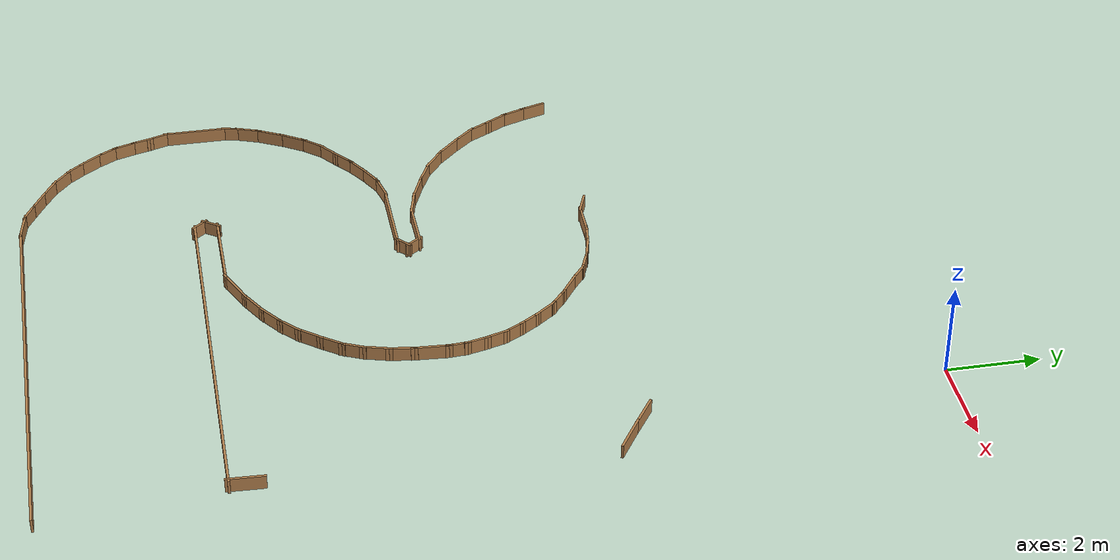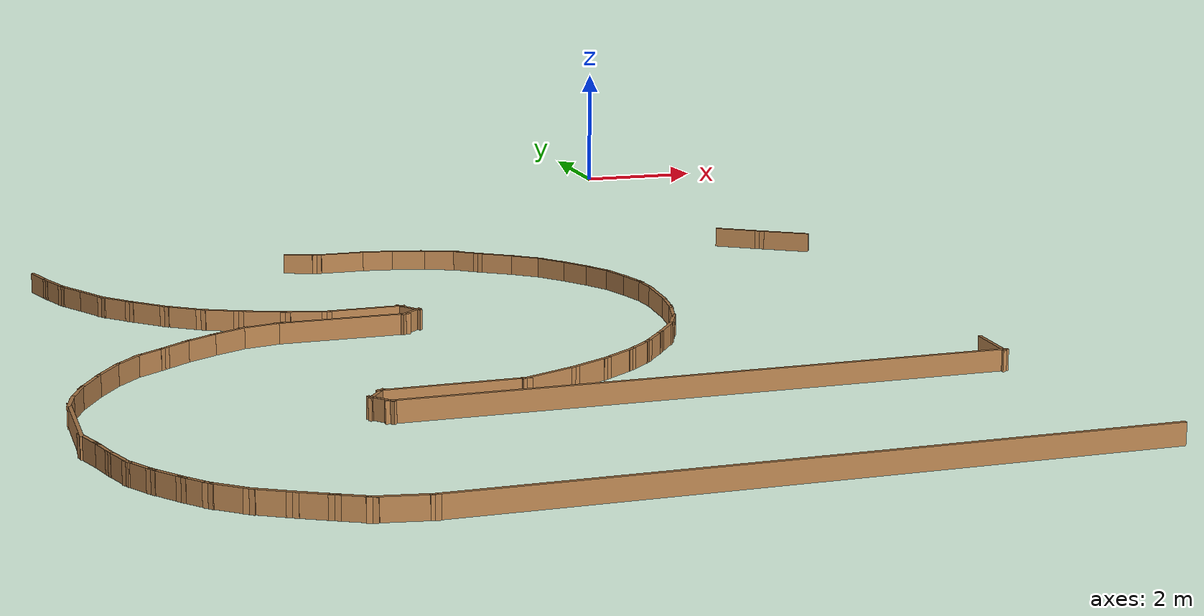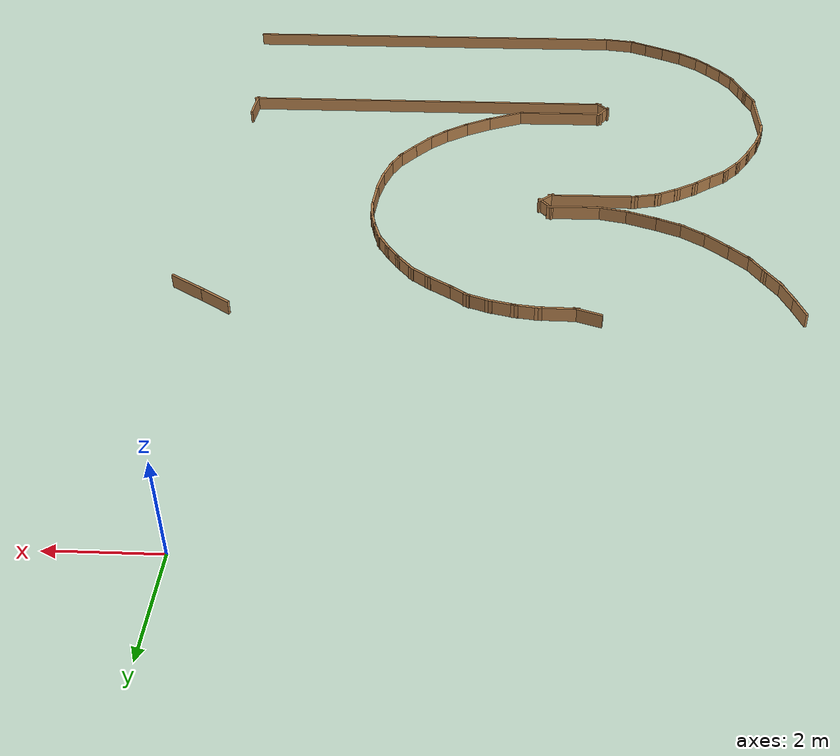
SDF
<sdf version="1.6">
 <model name="rover_racetrack">
  <pose>3.369 -0.8264 0 0 -0 0</pose>
  <link name="Wall_116">
   <collision name="Wall_116_Collision">
    <geometry><box><size>9.45 0.05 0.3</size></box></geometry>
    <pose>0 0 0.15 0 -0 0</pose>
   </collision>
   <visual name="Wall_116_Visual">
    <pose>0 0 0.15 0 -0 0</pose>
    <geometry><box><size>9.45 0.05 0.3</size></box></geometry>
    <material>
     <script><uri>file://media/materials/scripts/gazebo.material</uri><name>Gazebo/Wood</name></script>
     <ambient>0.435294 0.796078 0.67451 1</ambient>
    </material>
   </visual>
   <pose>-6.46341 -17.4035 0 0 -0 3.14159</pose>
  </link>
  <link name="Wall_117">
   <collision name="Wall_117_Collision">
    <geometry><box><size>0.828968 0.05 0.3</size></box></geometry>
    <pose>0 0 0.15 0 -0 0</pose>
   </collision>
   <visual name="Wall_117_Visual">
    <pose>0 0 0.15 0 -0 0</pose>
    <geometry><box><size>0.828968 0.05 0.3</size></box></geometry>
    <material>
     <script><uri>file://media/materials/scripts/gazebo.material</uri><name>Gazebo/Wood</name></script>
     <ambient>0.435294 0.796078 0.67451 1</ambient>
    </material>
   </visual>
   <pose>-11.473 -17.3462 0 0 -0 2.9721</pose>
  </link>
  <link name="Wall_118">
   <collision name="Wall_118_Collision">
    <geometry><box><size>0.575547 0.05 0.3</size></box></geometry>
    <pose>0 0 0.15 0 -0 0</pose>
   </collision>
   <visual name="Wall_118_Visual">
    <pose>0 0 0.15 0 -0 0</pose>
    <geometry><box><size>0.575547 0.05 0.3</size></box></geometry>
    <material>
     <script><uri>file://media/materials/scripts/gazebo.material</uri><name>Gazebo/Wood</name></script>
     <ambient>0.435294 0.796078 0.67451 1</ambient>
    </material>
   </visual>
   <pose>-11.9967 -17.1915 0 0 -0 2.6659</pose>
  </link>
  <link name="Wall_119">
   <collision name="Wall_119_Collision">
    <geometry><box><size>0.632155 0.05 0.3</size></box></geometry>
    <pose>0 0 0.15 0 -0 0</pose>
   </collision>
   <visual name="Wall_119_Visual">
    <pose>0 0 0.15 0 -0 0</pose>
    <geometry><box><size>0.632155 0.05 0.3</size></box></geometry>
    <material>
     <script><uri>file://media/materials/scripts/gazebo.material</uri><name>Gazebo/Wood</name></script>
     <ambient>0.435294 0.796078 0.67451 1</ambient>
    </material>
   </visual>
   <pose>-12.3979 -16.9794 0 0 -0 2.64604</pose>
  </link>
  <link name="Wall_120">
   <collision name="Wall_120_Collision">
    <geometry><box><size>0.653357 0.05 0.3</size></box></geometry>
    <pose>0 0 0.15 0 -0 0</pose>
   </collision>
   <visual name="Wall_120_Visual">
    <pose>0 0 0.15 0 -0 0</pose>
    <geometry><box><size>0.653357 0.05 0.3</size></box></geometry>
    <material>
     <script><uri>file://media/materials/scripts/gazebo.material</uri><name>Gazebo/Wood</name></script>
     <ambient>0.435294 0.796078 0.67451 1</ambient>
    </material>
   </visual>
   <pose>-12.8278 -16.7387 0 0 -0 2.6168</pose>
  </link>
  <link name="Wall_121">
   <collision name="Wall_121_Collision">
    <geometry><box><size>0.67106 0.05 0.3</size></box></geometry>
    <pose>0 0 0.15 0 -0 0</pose>
   </collision>
   <visual name="Wall_121_Visual">
    <pose>0 0 0.15 0 -0 0</pose>
    <geometry><box><size>0.67106 0.05 0.3</size></box></geometry>
    <material>
     <script><uri>file://media/materials/scripts/gazebo.material</uri><name>Gazebo/Wood</name></script>
     <ambient>0.435294 0.796078 0.67451 1</ambient>
    </material>
   </visual>
   <pose>-13.2463 -16.4464 0 0 -0 2.44967</pose>
  </link>
  <link name="Wall_122">
   <collision name="Wall_122_Collision">
    <geometry><box><size>0.540437 0.05 0.3</size></box></geometry>
    <pose>0 0 0.15 0 -0 0</pose>
   </collision>
   <visual name="Wall_122_Visual">
    <pose>0 0 0.15 0 -0 0</pose>
    <geometry><box><size>0.540437 0.05 0.3</size></box></geometry>
    <material>
     <script><uri>file://media/materials/scripts/gazebo.material</uri><name>Gazebo/Wood</name></script>
     <ambient>0.435294 0.796078 0.67451 1</ambient>
    </material>
   </visual>
   <pose>-13.573 -16.1311 0 0 -0 2.27305</pose>
  </link>
  <link name="Wall_124">
   <collision name="Wall_124_Collision">
    <geometry><box><size>0.6246 0.05 0.3</size></box></geometry>
    <pose>0 0 0.15 0 -0 0</pose>
   </collision>
   <visual name="Wall_124_Visual">
    <pose>0 0 0.15 0 -0 0</pose>
    <geometry><box><size>0.6246 0.05 0.3</size></box></geometry>
    <material>
     <script><uri>file://media/materials/scripts/gazebo.material</uri><name>Gazebo/Wood</name></script>
     <ambient>0.435294 0.796078 0.67451 1</ambient>
    </material>
   </visual>
   <pose>-13.8424 -15.7929 0 0 -0 2.21913</pose>
  </link>
  <link name="Wall_125">
   <collision name="Wall_125_Collision">
    <geometry><box><size>0.592354 0.05 0.3</size></box></geometry>
    <pose>0 0 0.15 0 -0 0</pose>
   </collision>
   <visual name="Wall_125_Visual">
    <pose>0 0 0.15 0 -0 0</pose>
    <geometry><box><size>0.592354 0.05 0.3</size></box></geometry>
    <material>
     <script><uri>file://media/materials/scripts/gazebo.material</uri><name>Gazebo/Wood</name></script>
     <ambient>0.435294 0.796078 0.67451 1</ambient>
    </material>
   </visual>
   <pose>-14.1003 -15.4146 0 0 -0 2.11566</pose>
  </link>
  <link name="Wall_126">
   <collision name="Wall_126_Collision">
    <geometry><box><size>0.610405 0.05 0.3</size></box></geometry>
    <pose>0 0 0.15 0 -0 0</pose>
   </collision>
   <visual name="Wall_126_Visual">
    <pose>0 0 0.15 0 -0 0</pose>
    <geometry><box><size>0.610405 0.05 0.3</size></box></geometry>
    <material>
     <script><uri>file://media/materials/scripts/gazebo.material</uri><name>Gazebo/Wood</name></script>
     <ambient>0.435294 0.796078 0.67451 1</ambient>
    </material>
   </visual>
   <pose>-14.2894 -15.0077 0 0 -0 1.90042</pose>
  </link>
  <link name="Wall_127">
   <collision name="Wall_127_Collision">
    <geometry><box><size>0.520047 0.05 0.3</size></box></geometry>
    <pose>0 0 0.15 0 -0 0</pose>
   </collision>
   <visual name="Wall_127_Visual">
    <pose>0 0 0.15 0 -0 0</pose>
    <geometry><box><size>0.520047 0.05 0.3</size></box></geometry>
    <material>
     <script><uri>file://media/materials/scripts/gazebo.material</uri><name>Gazebo/Wood</name></script>
     <ambient>0.435294 0.796078 0.67451 1</ambient>
    </material>
   </visual>
   <pose>-14.4155 -14.6122 0 0 -0 1.85335</pose>
  </link>
  <link name="Wall_128">
   <collision name="Wall_128_Collision">
    <geometry><box><size>0.574155 0.05 0.3</size></box></geometry>
    <pose>0 0 0.15 0 -0 0</pose>
   </collision>
   <visual name="Wall_128_Visual">
    <pose>0 0 0.15 0 -0 0</pose>
    <geometry><box><size>0.574155 0.05 0.3</size></box></geometry>
    <material>
     <script><uri>file://media/materials/scripts/gazebo.material</uri><name>Gazebo/Wood</name></script>
     <ambient>0.435294 0.796078 0.67451 1</ambient>
    </material>
   </visual>
   <pose>-14.5359 -14.2339 0 0 -0 1.90109</pose>
  </link>
  <link name="Wall_129">
   <collision name="Wall_129_Collision">
    <geometry><box><size>1.46832 0.05 0.3</size></box></geometry>
    <pose>0 0 0.15 0 -0 0</pose>
   </collision>
   <visual name="Wall_129_Visual">
    <pose>0 0 0.15 0 -0 0</pose>
    <geometry><box><size>1.46832 0.05 0.3</size></box></geometry>
    <material>
     <script><uri>file://media/materials/scripts/gazebo.material</uri><name>Gazebo/Wood</name></script>
     <ambient>0.435294 0.796078 0.67451 1</ambient>
    </material>
   </visual>
   <pose>-14.6047 -13.3741 0 0 -0 1.5708</pose>
  </link>
  <link name="Wall_130">
   <collision name="Wall_130_Collision">
    <geometry><box><size>0.455888 0.05 0.3</size></box></geometry>
    <pose>0 0 0.15 0 -0 0</pose>
   </collision>
   <visual name="Wall_130_Visual">
    <pose>0 0 0.15 0 -0 0</pose>
    <geometry><box><size>0.455888 0.05 0.3</size></box></geometry>
    <material>
     <script><uri>file://media/materials/scripts/gazebo.material</uri><name>Gazebo/Wood</name></script>
     <ambient>0.435294 0.796078 0.67451 1</ambient>
    </material>
   </visual>
   <pose>-14.5703 -12.5659 0 0 -0 1.344</pose>
  </link>
  <link name="Wall_131">
   <collision name="Wall_131_Collision">
    <geometry><box><size>0.614242 0.05 0.3</size></box></geometry>
    <pose>0 0 0.15 0 -0 0</pose>
   </collision>
   <visual name="Wall_131_Visual">
    <pose>0 0 0.15 0 -0 0</pose>
    <geometry><box><size>0.614242 0.05 0.3</size></box></geometry>
    <material>
     <script><uri>file://media/materials/scripts/gazebo.material</uri><name>Gazebo/Wood</name></script>
     <ambient>0.435294 0.796078 0.67451 1</ambient>
    </material>
   </visual>
   <pose>-14.4557 -12.1991 0 0 -0 1.21781</pose>
  </link>
  <link name="Wall_133">
   <collision name="Wall_133_Collision">
    <geometry><box><size>0.760271 0.05 0.3</size></box></geometry>
    <pose>0 0 0.15 0 -0 0</pose>
   </collision>
   <visual name="Wall_133_Visual">
    <pose>0 0 0.15 0 -0 0</pose>
    <geometry><box><size>0.760271 0.05 0.3</size></box></geometry>
    <material>
     <script><uri>file://media/materials/scripts/gazebo.material</uri><name>Gazebo/Wood</name></script>
     <ambient>0.435294 0.796078 0.67451 1</ambient>
    </material>
   </visual>
   <pose>-14.2321 -11.7119 0 0 -0 1.08194</pose>
  </link>
  <link name="Wall_134">
   <collision name="Wall_134_Collision">
    <geometry><box><size>0.681052 0.05 0.3</size></box></geometry>
    <pose>0 0 0.15 0 -0 0</pose>
   </collision>
   <visual name="Wall_134_Visual">
    <pose>0 0 0.15 0 -0 0</pose>
    <geometry><box><size>0.681052 0.05 0.3</size></box></geometry>
    <material>
     <script><uri>file://media/materials/scripts/gazebo.material</uri><name>Gazebo/Wood</name></script>
     <ambient>0.435294 0.796078 0.67451 1</ambient>
    </material>
   </visual>
   <pose>-13.9455 -11.219 0 0 -0 1.00076</pose>
  </link>
  <link name="Wall_135">
   <collision name="Wall_135_Collision">
    <geometry><box><size>0.637441 0.05 0.3</size></box></geometry>
    <pose>0 0 0.15 0 -0 0</pose>
   </collision>
   <visual name="Wall_135_Visual">
    <pose>0 0 0.15 0 -0 0</pose>
    <geometry><box><size>0.637441 0.05 0.3</size></box></geometry>
    <material>
     <script><uri>file://media/materials/scripts/gazebo.material</uri><name>Gazebo/Wood</name></script>
     <ambient>0.435294 0.796078 0.67451 1</ambient>
    </material>
   </visual>
   <pose>-13.6417 -10.812 0 0 -0 0.851966</pose>
  </link>
  <link name="Wall_136">
   <collision name="Wall_136_Collision">
    <geometry><box><size>0.633787 0.05 0.3</size></box></geometry>
    <pose>0 0 0.15 0 -0 0</pose>
   </collision>
   <visual name="Wall_136_Visual">
    <pose>0 0 0.15 0 -0 0</pose>
    <geometry><box><size>0.633787 0.05 0.3</size></box></geometry>
    <material>
     <script><uri>file://media/materials/scripts/gazebo.material</uri><name>Gazebo/Wood</name></script>
     <ambient>0.435294 0.796078 0.67451 1</ambient>
    </material>
   </visual>
   <pose>-13.2864 -10.4853 0 0 -0 0.634023</pose>
  </link>
  <link name="Wall_137">
   <collision name="Wall_137_Collision">
    <geometry><box><size>0.615514 0.05 0.3</size></box></geometry>
    <pose>0 0 0.15 0 -0 0</pose>
   </collision>
   <visual name="Wall_137_Visual">
    <pose>0 0 0.15 0 -0 0</pose>
    <geometry><box><size>0.615514 0.05 0.3</size></box></geometry>
    <material>
     <script><uri>file://media/materials/scripts/gazebo.material</uri><name>Gazebo/Wood</name></script>
     <ambient>0.435294 0.796078 0.67451 1</ambient>
    </material>
   </visual>
   <pose>-12.9081 -10.1987 0 0 -0 0.663203</pose>
  </link>
  <link name="Wall_138">
   <collision name="Wall_138_Collision">
    <geometry><box><size>0.633651 0.05 0.3</size></box></geometry>
    <pose>0 0 0.15 0 -0 0</pose>
   </collision>
   <visual name="Wall_138_Visual">
    <pose>0 0 0.15 0 -0 0</pose>
    <geometry><box><size>0.633651 0.05 0.3</size></box></geometry>
    <material>
     <script><uri>file://media/materials/scripts/gazebo.material</uri><name>Gazebo/Wood</name></script>
     <ambient>0.435294 0.796078 0.67451 1</ambient>
    </material>
   </visual>
   <pose>-12.5183 -9.9293 0 0 -0 0.548549</pose>
  </link>
  <link name="Wall_139">
   <collision name="Wall_139_Collision">
    <geometry><box><size>0.652442 0.05 0.3</size></box></geometry>
    <pose>0 0 0.15 0 -0 0</pose>
   </collision>
   <visual name="Wall_139_Visual">
    <pose>0 0 0.15 0 -0 0</pose>
    <geometry><box><size>0.652442 0.05 0.3</size></box></geometry>
    <material>
     <script><uri>file://media/materials/scripts/gazebo.material</uri><name>Gazebo/Wood</name></script>
     <ambient>0.435294 0.796078 0.67451 1</ambient>
    </material>
   </visual>
   <pose>-12.0884 -9.68856 0 0 -0 0.473851</pose>
  </link>
  <link name="Wall_140">
   <collision name="Wall_140_Collision">
    <geometry><box><size>0.678448 0.05 0.3</size></box></geometry>
    <pose>0 0 0.15 0 -0 0</pose>
   </collision>
   <visual name="Wall_140_Visual">
    <pose>0 0 0.15 0 -0 0</pose>
    <geometry><box><size>0.678448 0.05 0.3</size></box></geometry>
    <material>
     <script><uri>file://media/materials/scripts/gazebo.material</uri><name>Gazebo/Wood</name></script>
     <ambient>0.435294 0.796078 0.67451 1</ambient>
    </material>
   </visual>
   <pose>-11.607 -9.51661 0 0 -0 0.218669</pose>
  </link>
  <link name="Wall_141">
   <collision name="Wall_141_Collision">
    <geometry><box><size>1.98422 0.05 0.3</size></box></geometry>
    <pose>0 0 0.15 0 -0 0</pose>
   </collision>
   <visual name="Wall_141_Visual">
    <pose>0 0 0.15 0 -0 0</pose>
    <geometry><box><size>1.98422 0.05 0.3</size></box></geometry>
    <material>
     <script><uri>file://media/materials/scripts/gazebo.material</uri><name>Gazebo/Wood</name></script>
     <ambient>0.435294 0.796078 0.67451 1</ambient>
    </material>
   </visual>
   <pose>-10.4319 -9.45356 0 0 -0 0.00625</pose>
  </link>
  <link name="Wall_142">
   <collision name="Wall_142_Collision">
    <geometry><box><size>0.458455 0.05 0.3</size></box></geometry>
    <pose>0 0 0.15 0 -0 0</pose>
   </collision>
   <visual name="Wall_142_Visual">
    <pose>0 0 0.15 0 -0 0</pose>
    <geometry><box><size>0.458455 0.05 0.3</size></box></geometry>
    <material>
     <script><uri>file://media/materials/scripts/gazebo.material</uri><name>Gazebo/Wood</name></script>
     <ambient>0.435294 0.796078 0.67451 1</ambient>
    </material>
   </visual>
   <pose>-9.4002 -9.34465 0 0 -0 0.732815</pose>
  </link>
  <link name="Wall_143">
   <collision name="Wall_143_Collision">
    <geometry><box><size>0.477868 0.05 0.3</size></box></geometry>
    <pose>0 0 0.15 0 -0 0</pose>
   </collision>
   <visual name="Wall_143_Visual">
    <pose>0 0 0.15 0 -0 0</pose>
    <geometry><box><size>0.477868 0.05 0.3</size></box></geometry>
    <material>
     <script><uri>file://media/materials/scripts/gazebo.material</uri><name>Gazebo/Wood</name></script>
     <ambient>0.435294 0.796078 0.67451 1</ambient>
    </material>
   </visual>
   <pose>-9.38301 -9.10965 0 0 -0 2.2073</pose>
  </link>
  <link name="Wall_144">
   <collision name="Wall_144_Collision">
    <geometry><box><size>1.22783 0.05 0.3</size></box></geometry>
    <pose>0 0 0.15 0 -0 0</pose>
   </collision>
   <visual name="Wall_144_Visual">
    <pose>0 0 0.15 0 -0 0</pose>
    <geometry><box><size>1.22783 0.05 0.3</size></box></geometry>
    <material>
     <script><uri>file://media/materials/scripts/gazebo.material</uri><name>Gazebo/Wood</name></script>
     <ambient>0.435294 0.796078 0.67451 1</ambient>
    </material>
   </visual>
   <pose>-10.0192 -8.98355 0 0 0 -3.13096</pose>
  </link>
  <link name="Wall_145">
   <collision name="Wall_145_Collision">
    <geometry><box><size>0.739458 0.05 0.3</size></box></geometry>
    <pose>0 0 0.15 0 -0 0</pose>
   </collision>
   <visual name="Wall_145_Visual">
    <pose>0 0 0.15 0 -0 0</pose>
    <geometry><box><size>0.739458 0.05 0.3</size></box></geometry>
    <material>
     <script><uri>file://media/materials/scripts/gazebo.material</uri><name>Gazebo/Wood</name></script>
     <ambient>0.435294 0.796078 0.67451 1</ambient>
    </material>
   </visual>
   <pose>-10.8446 -8.9205 0 0 -0 2.90605</pose>
  </link>
  <link name="Wall_146">
   <collision name="Wall_146_Collision">
    <geometry><box><size>0.829069 0.05 0.3</size></box></geometry>
    <pose>0 0 0.15 0 -0 0</pose>
   </collision>
   <visual name="Wall_146_Visual">
    <pose>0 0 0.15 0 -0 0</pose>
    <geometry><box><size>0.829069 0.05 0.3</size></box></geometry>
    <material>
     <script><uri>file://media/materials/scripts/gazebo.material</uri><name>Gazebo/Wood</name></script>
     <ambient>0.435294 0.796078 0.67451 1</ambient>
    </material>
   </visual>
   <pose>-11.4465 -8.72562 0 0 -0 2.76109</pose>
  </link>
  <link name="Wall_148">
   <collision name="Wall_148_Collision">
    <geometry><box><size>0.708904 0.05 0.3</size></box></geometry>
    <pose>0 0 0.15 0 -0 0</pose>
   </collision>
   <visual name="Wall_148_Visual">
    <pose>0 0 0.15 0 -0 0</pose>
    <geometry><box><size>0.708904 0.05 0.3</size></box></geometry>
    <material>
     <script><uri>file://media/materials/scripts/gazebo.material</uri><name>Gazebo/Wood</name></script>
     <ambient>0.435294 0.796078 0.67451 1</ambient>
    </material>
   </visual>
   <pose>-12.0139 -8.47915 0 0 -0 2.69629</pose>
  </link>
  <link name="Wall_149">
   <collision name="Wall_149_Collision">
    <geometry><box><size>0.732393 0.05 0.3</size></box></geometry>
    <pose>0 0 0.15 0 -0 0</pose>
   </collision>
   <visual name="Wall_149_Visual">
    <pose>0 0 0.15 0 -0 0</pose>
    <geometry><box><size>0.732393 0.05 0.3</size></box></geometry>
    <material>
     <script><uri>file://media/materials/scripts/gazebo.material</uri><name>Gazebo/Wood</name></script>
     <ambient>0.435294 0.796078 0.67451 1</ambient>
    </material>
   </visual>
   <pose>-12.5011 -8.18683 0 0 -0 2.5099</pose>
  </link>
  <link name="Wall_150">
   <collision name="Wall_150_Collision">
    <geometry><box><size>0.774216 0.05 0.3</size></box></geometry>
    <pose>0 0 0.15 0 -0 0</pose>
   </collision>
   <visual name="Wall_150_Visual">
    <pose>0 0 0.15 0 -0 0</pose>
    <geometry><box><size>0.774216 0.05 0.3</size></box></geometry>
    <material>
     <script><uri>file://media/materials/scripts/gazebo.material</uri><name>Gazebo/Wood</name></script>
     <ambient>0.435294 0.796078 0.67451 1</ambient>
    </material>
   </visual>
   <pose>-12.9597 -7.79706 0 0 -0 2.36918</pose>
  </link>
  <link name="Wall_151">
   <collision name="Wall_151_Collision">
    <geometry><box><size>0.677452 0.05 0.3</size></box></geometry>
    <pose>0 0 0.15 0 -0 0</pose>
   </collision>
   <visual name="Wall_151_Visual">
    <pose>0 0 0.15 0 -0 0</pose>
    <geometry><box><size>0.677452 0.05 0.3</size></box></geometry>
    <material>
     <script><uri>file://media/materials/scripts/gazebo.material</uri><name>Gazebo/Wood</name></script>
     <ambient>0.435294 0.796078 0.67451 1</ambient>
    </material>
   </visual>
   <pose>-13.3609 -7.38437 0 0 -0 2.31007</pose>
  </link>
  <link name="Wall_152">
   <collision name="Wall_152_Collision">
    <geometry><box><size>0.66331 0.05 0.3</size></box></geometry>
    <pose>0 0 0.15 0 -0 0</pose>
   </collision>
   <visual name="Wall_152_Visual">
    <pose>0 0 0.15 0 -0 0</pose>
    <geometry><box><size>0.66331 0.05 0.3</size></box></geometry>
    <material>
     <script><uri>file://media/materials/scripts/gazebo.material</uri><name>Gazebo/Wood</name></script>
     <ambient>0.435294 0.796078 0.67451 1</ambient>
    </material>
   </visual>
   <pose>-13.6647 -6.96595 0 0 -0 2.0844</pose>
  </link>
  <link name="Wall_153">
   <collision name="Wall_153_Collision">
    <geometry><box><size>0.627774 0.05 0.3</size></box></geometry>
    <pose>0 0 0.15 0 -0 0</pose>
   </collision>
   <visual name="Wall_153_Visual">
    <pose>0 0 0.15 0 -0 0</pose>
    <geometry><box><size>0.627774 0.05 0.3</size></box></geometry>
    <material>
     <script><uri>file://media/materials/scripts/gazebo.material</uri><name>Gazebo/Wood</name></script>
     <ambient>0.435294 0.796078 0.67451 1</ambient>
    </material>
   </visual>
   <pose>-13.9111 -6.53606 0 0 -0 2.09887</pose>
  </link>
  <link name="Wall_154">
   <collision name="Wall_154_Collision">
    <geometry><box><size>0.675955 0.05 0.3</size></box></geometry>
    <pose>0 0 0.15 0 -0 0</pose>
   </collision>
   <visual name="Wall_154_Visual">
    <pose>0 0 0.15 0 -0 0</pose>
    <geometry><box><size>0.675955 0.05 0.3</size></box></geometry>
    <material>
     <script><uri>file://media/materials/scripts/gazebo.material</uri><name>Gazebo/Wood</name></script>
     <ambient>0.435294 0.796078 0.67451 1</ambient>
    </material>
   </visual>
   <pose>-14.1232 -6.08325 0 0 -0 1.92702</pose>
  </link>
  <link name="Wall_155">
   <collision name="Wall_155_Collision">
    <geometry><box><size>0.606823 0.05 0.3</size></box></geometry>
    <pose>0 0 0.15 0 -0 0</pose>
   </collision>
   <visual name="Wall_155_Visual">
    <pose>0 0 0.15 0 -0 0</pose>
    <geometry><box><size>0.606823 0.05 0.3</size></box></geometry>
    <material>
     <script><uri>file://media/materials/scripts/gazebo.material</uri><name>Gazebo/Wood</name></script>
     <ambient>0.435294 0.796078 0.67451 1</ambient>
    </material>
   </visual>
   <pose>-14.2837 -5.61897 0 0 -0 1.87668</pose>
  </link>
  <link name="Wall_308">
   <collision name="Wall_308_Collision">
    <geometry><box><size>0.800861 0.05 0.3</size></box></geometry>
    <pose>0 0 0.15 0 -0 0</pose>
   </collision>
   <visual name="Wall_308_Visual">
    <pose>0 0 0.15 0 -0 0</pose>
    <geometry><box><size>0.800861 0.05 0.3</size></box></geometry>
    <material>
     <script><uri>file://media/materials/scripts/gazebo.material</uri><name>Gazebo/Wood</name></script>
     <ambient>0.435294 0.796078 0.67451 1</ambient>
    </material>
   </visual>
   <pose>-2.24553 -13.3828 0 0 0 -1.61159</pose>
  </link>
  <link name="Wall_309">
   <collision name="Wall_309_Collision">
    <geometry><box><size>8.63516 0.05 0.3</size></box></geometry>
    <pose>0 0 0.15 0 -0 0</pose>
   </collision>
   <visual name="Wall_309_Visual">
    <pose>0 0 0.15 0 -0 0</pose>
    <geometry><box><size>8.63516 0.05 0.3</size></box></geometry>
    <material>
     <script><uri>file://media/materials/scripts/gazebo.material</uri><name>Gazebo/Wood</name></script>
     <ambient>0.435294 0.796078 0.67451 1</ambient>
    </material>
   </visual>
   <pose>-6.50136 -13.701 0 0 -0 3.14003</pose>
  </link>
  <link name="Wall_310">
   <collision name="Wall_310_Collision">
    <geometry><box><size>0.441978 0.05 0.3</size></box></geometry>
    <pose>0 0 0.15 0 -0 0</pose>
   </collision>
   <visual name="Wall_310_Visual">
    <pose>0 0 0.15 0 -0 0</pose>
    <geometry><box><size>0.441978 0.05 0.3</size></box></geometry>
    <material>
     <script><uri>file://media/materials/scripts/gazebo.material</uri><name>Gazebo/Wood</name></script>
     <ambient>0.435294 0.796078 0.67451 1</ambient>
    </material>
   </visual>
   <pose>-10.8367 -13.5817 0 0 -0 2.25972</pose>
  </link>
  <link name="Wall_311">
   <collision name="Wall_311_Collision">
    <geometry><box><size>0.47367 0.05 0.3</size></box></geometry>
    <pose>0 0 0.15 0 -0 0</pose>
   </collision>
   <visual name="Wall_311_Visual">
    <pose>0 0 0.15 0 -0 0</pose>
    <geometry><box><size>0.47367 0.05 0.3</size></box></geometry>
    <material>
     <script><uri>file://media/materials/scripts/gazebo.material</uri><name>Gazebo/Wood</name></script>
     <ambient>0.435294 0.796078 0.67451 1</ambient>
    </material>
   </visual>
   <pose>-10.8367 -13.3364 0 0 -0 0.96007</pose>
  </link>
  <link name="Wall_312">
   <collision name="Wall_312_Collision">
    <geometry><box><size>2.07246 0.05 0.3</size></box></geometry>
    <pose>0 0 0.15 0 -0 0</pose>
   </collision>
   <visual name="Wall_312_Visual">
    <pose>0 0 0.15 0 -0 0</pose>
    <geometry><box><size>2.07246 0.05 0.3</size></box></geometry>
    <material>
     <script><uri>file://media/materials/scripts/gazebo.material</uri><name>Gazebo/Wood</name></script>
     <ambient>0.435294 0.796078 0.67451 1</ambient>
    </material>
   </visual>
   <pose>-9.78272 -13.1972 0 0 -0 0.006896</pose>
  </link>
  <link name="Wall_313">
   <collision name="Wall_313_Collision">
    <geometry><box><size>0.9752 0.05 0.3</size></box></geometry>
    <pose>0 0 0.15 0 -0 0</pose>
   </collision>
   <visual name="Wall_313_Visual">
    <pose>0 0 0.15 0 -0 0</pose>
    <geometry><box><size>0.9752 0.05 0.3</size></box></geometry>
    <material>
     <script><uri>file://media/materials/scripts/gazebo.material</uri><name>Gazebo/Wood</name></script>
     <ambient>0.435294 0.796078 0.67451 1</ambient>
    </material>
   </visual>
   <pose>-8.44366 -13.0248 0 0 -0 0.41333</pose>
  </link>
  <link name="Wall_314">
   <collision name="Wall_314_Collision">
    <geometry><box><size>0.773269 0.05 0.3</size></box></geometry>
    <pose>0 0 0.15 0 -0 0</pose>
   </collision>
   <visual name="Wall_314_Visual">
    <pose>0 0 0.15 0 -0 0</pose>
    <geometry><box><size>0.773269 0.05 0.3</size></box></geometry>
    <material>
     <script><uri>file://media/materials/scripts/gazebo.material</uri><name>Gazebo/Wood</name></script>
     <ambient>0.435294 0.796078 0.67451 1</ambient>
    </material>
   </visual>
   <pose>-7.79402 -12.7066 0 0 -0 0.511231</pose>
  </link>
  <link name="Wall_315">
   <collision name="Wall_315_Collision">
    <geometry><box><size>0.72025 0.05 0.3</size></box></geometry>
    <pose>0 0 0.15 0 -0 0</pose>
   </collision>
   <visual name="Wall_315_Visual">
    <pose>0 0 0.15 0 -0 0</pose>
    <geometry><box><size>0.72025 0.05 0.3</size></box></geometry>
    <material>
     <script><uri>file://media/materials/scripts/gazebo.material</uri><name>Gazebo/Wood</name></script>
     <ambient>0.435294 0.796078 0.67451 1</ambient>
    </material>
   </visual>
   <pose>-7.29021 -12.3884 0 0 -0 0.620249</pose>
  </link>
  <link name="Wall_316">
   <collision name="Wall_316_Collision">
    <geometry><box><size>0.637853 0.05 0.3</size></box></geometry>
    <pose>0 0 0.15 0 -0 0</pose>
   </collision>
   <visual name="Wall_316_Visual">
    <pose>0 0 0.15 0 -0 0</pose>
    <geometry><box><size>0.637853 0.05 0.3</size></box></geometry>
    <material>
     <script><uri>file://media/materials/scripts/gazebo.material</uri><name>Gazebo/Wood</name></script>
     <ambient>0.435294 0.796078 0.67451 1</ambient>
    </material>
   </visual>
   <pose>-6.87921 -12.057 0 0 -0 0.746956</pose>
  </link>
  <link name="Wall_317">
   <collision name="Wall_317_Collision">
    <geometry><box><size>0.677997 0.05 0.3</size></box></geometry>
    <pose>0 0 0.15 0 -0 0</pose>
   </collision>
   <visual name="Wall_317_Visual">
    <pose>0 0 0.15 0 -0 0</pose>
    <geometry><box><size>0.677997 0.05 0.3</size></box></geometry>
    <material>
     <script><uri>file://media/materials/scripts/gazebo.material</uri><name>Gazebo/Wood</name></script>
     <ambient>0.435294 0.796078 0.67451 1</ambient>
    </material>
   </visual>
   <pose>-6.5345 -11.6858 0 0 -0 0.892134</pose>
  </link>
  <link name="Wall_318">
   <collision name="Wall_318_Collision">
    <geometry><box><size>0.661767 0.05 0.3</size></box></geometry>
    <pose>0 0 0.15 0 -0 0</pose>
   </collision>
   <visual name="Wall_318_Visual">
    <pose>0 0 0.15 0 -0 0</pose>
    <geometry><box><size>0.661767 0.05 0.3</size></box></geometry>
    <material>
     <script><uri>file://media/materials/scripts/gazebo.material</uri><name>Gazebo/Wood</name></script>
     <ambient>0.435294 0.796078 0.67451 1</ambient>
    </material>
   </visual>
   <pose>-6.21631 -11.2748 0 0 -0 0.932477</pose>
  </link>
  <link name="Wall_319">
   <collision name="Wall_319_Collision">
    <geometry><box><size>0.588919 0.05 0.3</size></box></geometry>
    <pose>0 0 0.15 0 -0 0</pose>
   </collision>
   <visual name="Wall_319_Visual">
    <pose>0 0 0.15 0 -0 0</pose>
    <geometry><box><size>0.588919 0.05 0.3</size></box></geometry>
    <material>
     <script><uri>file://media/materials/scripts/gazebo.material</uri><name>Gazebo/Wood</name></script>
     <ambient>0.435294 0.796078 0.67451 1</ambient>
    </material>
   </visual>
   <pose>-5.97104 -10.8704 0 0 -0 1.13417</pose>
  </link>
  <link name="Wall_320">
   <collision name="Wall_320_Collision">
    <geometry><box><size>0.687237 0.05 0.3</size></box></geometry>
    <pose>0 0 0.15 0 -0 0</pose>
   </collision>
   <visual name="Wall_320_Visual">
    <pose>0 0 0.15 0 -0 0</pose>
    <geometry><box><size>0.687237 0.05 0.3</size></box></geometry>
    <material>
     <script><uri>file://media/materials/scripts/gazebo.material</uri><name>Gazebo/Wood</name></script>
     <ambient>0.435294 0.796078 0.67451 1</ambient>
    </material>
   </visual>
   <pose>-5.80531 -10.413 0 0 -0 1.29589</pose>
  </link>
  <link name="Wall_321">
   <collision name="Wall_321_Collision">
    <geometry><box><size>0.660047 0.05 0.3</size></box></geometry>
    <pose>0 0 0.15 0 -0 0</pose>
   </collision>
   <visual name="Wall_321_Visual">
    <pose>0 0 0.15 0 -0 0</pose>
    <geometry><box><size>0.660047 0.05 0.3</size></box></geometry>
    <material>
     <script><uri>file://media/materials/scripts/gazebo.material</uri><name>Gazebo/Wood</name></script>
     <ambient>0.435294 0.796078 0.67451 1</ambient>
    </material>
   </visual>
   <pose>-5.69262 -9.90255 0 0 -0 1.41419</pose>
  </link>
  <link name="Wall_323">
   <collision name="Wall_323_Collision">
    <geometry><box><size>0.853177 0.05 0.3</size></box></geometry>
    <pose>0 0 0.15 0 -0 0</pose>
   </collision>
   <visual name="Wall_323_Visual">
    <pose>0 0 0.15 0 -0 0</pose>
    <geometry><box><size>0.853177 0.05 0.3</size></box></geometry>
    <material>
     <script><uri>file://media/materials/scripts/gazebo.material</uri><name>Gazebo/Wood</name></script>
     <ambient>0.435294 0.796078 0.67451 1</ambient>
    </material>
   </visual>
   <pose>-5.63296 -9.29931 0 0 -0 1.51425</pose>
  </link>
  <link name="Wall_324">
   <collision name="Wall_324_Collision">
    <geometry><box><size>0.535397 0.05 0.3</size></box></geometry>
    <pose>0 0 0.15 0 -0 0</pose>
   </collision>
   <visual name="Wall_324_Visual">
    <pose>0 0 0.15 0 -0 0</pose>
    <geometry><box><size>0.535397 0.05 0.3</size></box></geometry>
    <material>
     <script><uri>file://media/materials/scripts/gazebo.material</uri><name>Gazebo/Wood</name></script>
     <ambient>0.435294 0.796078 0.67451 1</ambient>
    </material>
   </visual>
   <pose>-5.62633 -8.75573 0 0 -0 1.63965</pose>
  </link>
  <link name="Wall_325">
   <collision name="Wall_325_Collision">
    <geometry><box><size>0.587315 0.05 0.3</size></box></geometry>
    <pose>0 0 0.15 0 -0 0</pose>
   </collision>
   <visual name="Wall_325_Visual">
    <pose>0 0 0.15 0 -0 0</pose>
    <geometry><box><size>0.587315 0.05 0.3</size></box></geometry>
    <material>
     <script><uri>file://media/materials/scripts/gazebo.material</uri><name>Gazebo/Wood</name></script>
     <ambient>0.435294 0.796078 0.67451 1</ambient>
    </material>
   </visual>
   <pose>-5.69262 -8.35136 0 0 -0 1.81577</pose>
  </link>
  <link name="Wall_326">
   <collision name="Wall_326_Collision">
    <geometry><box><size>0.581854 0.05 0.3</size></box></geometry>
    <pose>0 0 0.15 0 -0 0</pose>
   </collision>
   <visual name="Wall_326_Visual">
    <pose>0 0 0.15 0 -0 0</pose>
    <geometry><box><size>0.581854 0.05 0.3</size></box></geometry>
    <material>
     <script><uri>file://media/materials/scripts/gazebo.material</uri><name>Gazebo/Wood</name></script>
     <ambient>0.435294 0.796078 0.67451 1</ambient>
    </material>
   </visual>
   <pose>-5.81194 -7.93373 0 0 -0 1.88284</pose>
  </link>
  <link name="Wall_327">
   <collision name="Wall_327_Collision">
    <geometry><box><size>0.577559 0.05 0.3</size></box></geometry>
    <pose>0 0 0.15 0 -0 0</pose>
   </collision>
   <visual name="Wall_327_Visual">
    <pose>0 0 0.15 0 -0 0</pose>
    <geometry><box><size>0.577559 0.05 0.3</size></box></geometry>
    <material>
     <script><uri>file://media/materials/scripts/gazebo.material</uri><name>Gazebo/Wood</name></script>
     <ambient>0.435294 0.796078 0.67451 1</ambient>
    </material>
   </visual>
   <pose>-5.9843 -7.54262 0 0 -0 2.08994</pose>
  </link>
  <link name="Wall_328">
   <collision name="Wall_328_Collision">
    <geometry><box><size>0.598624 0.05 0.3</size></box></geometry>
    <pose>0 0 0.15 0 -0 0</pose>
   </collision>
   <visual name="Wall_328_Visual">
    <pose>0 0 0.15 0 -0 0</pose>
    <geometry><box><size>0.598624 0.05 0.3</size></box></geometry>
    <material>
     <script><uri>file://media/materials/scripts/gazebo.material</uri><name>Gazebo/Wood</name></script>
     <ambient>0.435294 0.796078 0.67451 1</ambient>
    </material>
   </visual>
   <pose>-6.21631 -7.1714 0 0 -0 2.167</pose>
  </link>
  <link name="Wall_329">
   <collision name="Wall_329_Collision">
    <geometry><box><size>0.640727 0.05 0.3</size></box></geometry>
    <pose>0 0 0.15 0 -0 0</pose>
   </collision>
   <visual name="Wall_329_Visual">
    <pose>0 0 0.15 0 -0 0</pose>
    <geometry><box><size>0.640727 0.05 0.3</size></box></geometry>
    <material>
     <script><uri>file://media/materials/scripts/gazebo.material</uri><name>Gazebo/Wood</name></script>
     <ambient>0.435294 0.796078 0.67451 1</ambient>
    </material>
   </visual>
   <pose>-6.49473 -6.79354 0 0 -0 2.24132</pose>
  </link>
  <link name="Wall_330">
   <collision name="Wall_330_Collision">
    <geometry><box><size>0.611753 0.05 0.3</size></box></geometry>
    <pose>0 0 0.15 0 -0 0</pose>
   </collision>
   <visual name="Wall_330_Visual">
    <pose>0 0 0.15 0 -0 0</pose>
    <geometry><box><size>0.611753 0.05 0.3</size></box></geometry>
    <material>
     <script><uri>file://media/materials/scripts/gazebo.material</uri><name>Gazebo/Wood</name></script>
     <ambient>0.435294 0.796078 0.67451 1</ambient>
    </material>
   </visual>
   <pose>-6.82618 -6.45546 0 0 -0 2.45788</pose>
  </link>
  <link name="Wall_331">
   <collision name="Wall_331_Collision">
    <geometry><box><size>0.712647 0.05 0.3</size></box></geometry>
    <pose>0 0 0.15 0 -0 0</pose>
   </collision>
   <visual name="Wall_331_Visual">
    <pose>0 0 0.15 0 -0 0</pose>
    <geometry><box><size>0.712647 0.05 0.3</size></box></geometry>
    <material>
     <script><uri>file://media/materials/scripts/gazebo.material</uri><name>Gazebo/Wood</name></script>
     <ambient>0.435294 0.796078 0.67451 1</ambient>
    </material>
   </visual>
   <pose>-7.23718 -6.15053 0 0 -0 2.54052</pose>
  </link>
  <link name="Wall_332">
   <collision name="Wall_332_Collision">
    <geometry><box><size>0.566311 0.05 0.3</size></box></geometry>
    <pose>0 0 0.15 0 -0 0</pose>
   </collision>
   <visual name="Wall_332_Visual">
    <pose>0 0 0.15 0 -0 0</pose>
    <geometry><box><size>0.566311 0.05 0.3</size></box></geometry>
    <material>
     <script><uri>file://media/materials/scripts/gazebo.material</uri><name>Gazebo/Wood</name></script>
     <ambient>0.435294 0.796078 0.67451 1</ambient>
    </material>
   </visual>
   <pose>-7.63492 -5.86548 0 0 -0 2.49172</pose>
  </link>
  <link name="Wall_333">
   <collision name="Wall_333_Collision">
    <geometry><box><size>0.62024 0.05 0.3</size></box></geometry>
    <pose>0 0 0.15 0 -0 0</pose>
   </collision>
   <visual name="Wall_333_Visual">
    <pose>0 0 0.15 0 -0 0</pose>
    <geometry><box><size>0.62024 0.05 0.3</size></box></geometry>
    <material>
     <script><uri>file://media/materials/scripts/gazebo.material</uri><name>Gazebo/Wood</name></script>
     <ambient>0.435294 0.796078 0.67451 1</ambient>
    </material>
   </visual>
   <pose>-8.01941 -5.65335 0 0 -0 2.76632</pose>
  </link>
  <link name="Wall_334">
   <collision name="Wall_334_Collision">
    <geometry><box><size>0.670959 0.05 0.3</size></box></geometry>
    <pose>0 0 0.15 0 -0 0</pose>
   </collision>
   <visual name="Wall_334_Visual">
    <pose>0 0 0.15 0 -0 0</pose>
    <geometry><box><size>0.670959 0.05 0.3</size></box></geometry>
    <material>
     <script><uri>file://media/materials/scripts/gazebo.material</uri><name>Gazebo/Wood</name></script>
     <ambient>0.435294 0.796078 0.67451 1</ambient>
    </material>
   </visual>
   <pose>-8.49007 -5.50088 0 0 -0 2.88427</pose>
  </link>
  <link name="Wall_335">
   <collision name="Wall_335_Collision">
    <geometry><box><size>0.618743 0.05 0.3</size></box></geometry>
    <pose>0 0 0.15 0 -0 0</pose>
   </collision>
   <visual name="Wall_335_Visual">
    <pose>0 0 0.15 0 -0 0</pose>
    <geometry><box><size>0.618743 0.05 0.3</size></box></geometry>
    <material>
     <script><uri>file://media/materials/scripts/gazebo.material</uri><name>Gazebo/Wood</name></script>
     <ambient>0.435294 0.796078 0.67451 1</ambient>
    </material>
   </visual>
   <pose>-8.97399 -5.40145 0 0 -0 2.9997</pose>
  </link>
  <link name="Wall_336">
   <collision name="Wall_336_Collision">
    <geometry><box><size>0.892569 0.05 0.3</size></box></geometry>
    <pose>0 0 0.15 0 -0 0</pose>
   </collision>
   <visual name="Wall_336_Visual">
    <pose>0 0 0.15 0 -0 0</pose>
    <geometry><box><size>0.892569 0.05 0.3</size></box></geometry>
    <material>
     <script><uri>file://media/materials/scripts/gazebo.material</uri><name>Gazebo/Wood</name></script>
     <ambient>0.435294 0.796078 0.67451 1</ambient>
    </material>
   </visual>
   <pose>-9.57723 -5.36167 0 0 -0 3.12374</pose>
  </link>
  <link name="Wall_338">
   <collision name="Wall_338_Collision">
    <geometry><box><size>0.603107 0.05 0.3</size></box></geometry>
    <pose>0 0 0.15 0 -0 0</pose>
   </collision>
   <visual name="Wall_338_Visual">
    <pose>0 0 0.15 0 -0 0</pose>
    <geometry><box><size>0.603107 0.05 0.3</size></box></geometry>
    <material>
     <script><uri>file://media/materials/scripts/gazebo.material</uri><name>Gazebo/Wood</name></script>
     <ambient>0.435294 0.796078 0.67451 1</ambient>
    </material>
   </visual>
   <pose>-10.1606 -5.2755 0 0 -0 2.78282</pose>
  </link>
  <link name="Wall_349">
   <collision name="Wall_349_Collision">
    <geometry><box><size>0.814529 0.05 0.3</size></box></geometry>
    <pose>0 0 0.15 0 -0 0</pose>
   </collision>
   <visual name="Wall_349_Visual">
    <pose>0 0 0.15 0 -0 0</pose>
    <geometry><box><size>0.814529 0.05 0.3</size></box></geometry>
    <material>
     <script><uri>file://media/materials/scripts/gazebo.material</uri><name>Gazebo/Wood</name></script>
     <ambient>0.435294 0.796078 0.67451 1</ambient>
    </material>
   </visual>
   <pose>-2.8206 -5.54672 0 0 0 -0.592187</pose>
  </link>
  <link name="Wall_350">
   <collision name="Wall_350_Collision">
    <geometry><box><size>0.889678 0.05 0.3</size></box></geometry>
    <pose>0 0 0.15 0 -0 0</pose>
   </collision>
   <visual name="Wall_350_Visual">
    <pose>0 0 0.15 0 -0 0</pose>
    <geometry><box><size>0.889678 0.05 0.3</size></box></geometry>
    <material>
     <script><uri>file://media/materials/scripts/gazebo.material</uri><name>Gazebo/Wood</name></script>
     <ambient>0.435294 0.796078 0.67451 1</ambient>
    </material>
   </visual>
   <pose>-2.23414 -5.93268 0 0 0 -0.572966</pose>
  </link>
  <static>1</static>
 </model>
</sdf>
